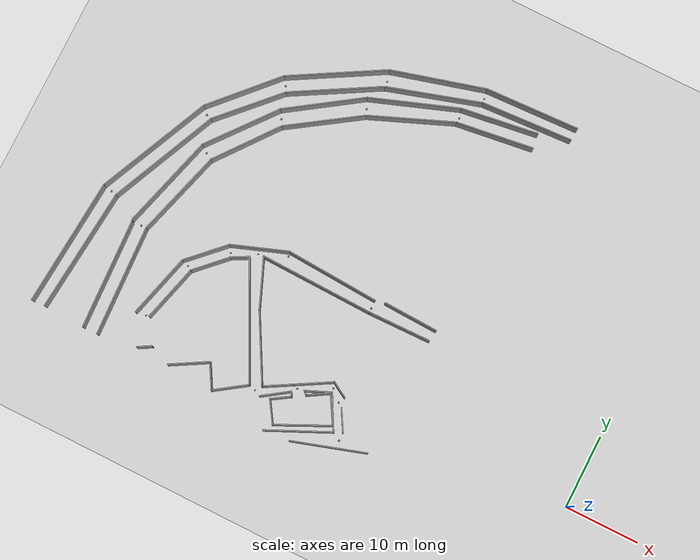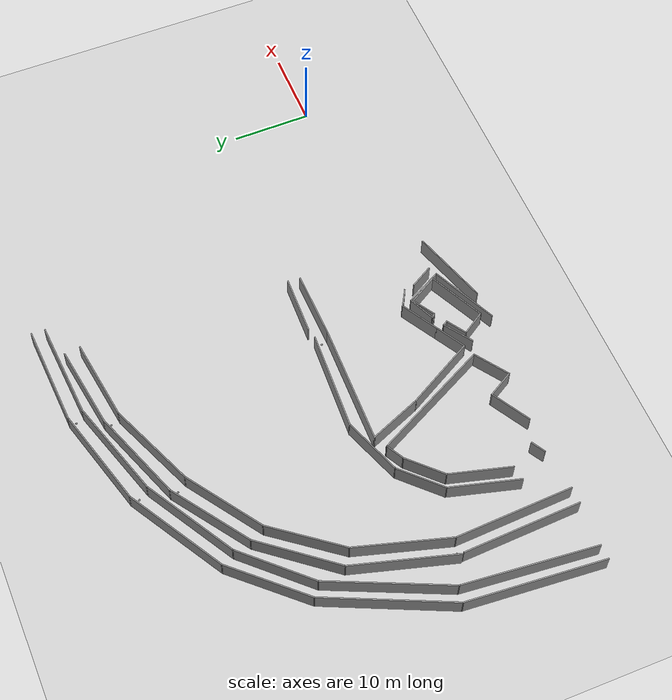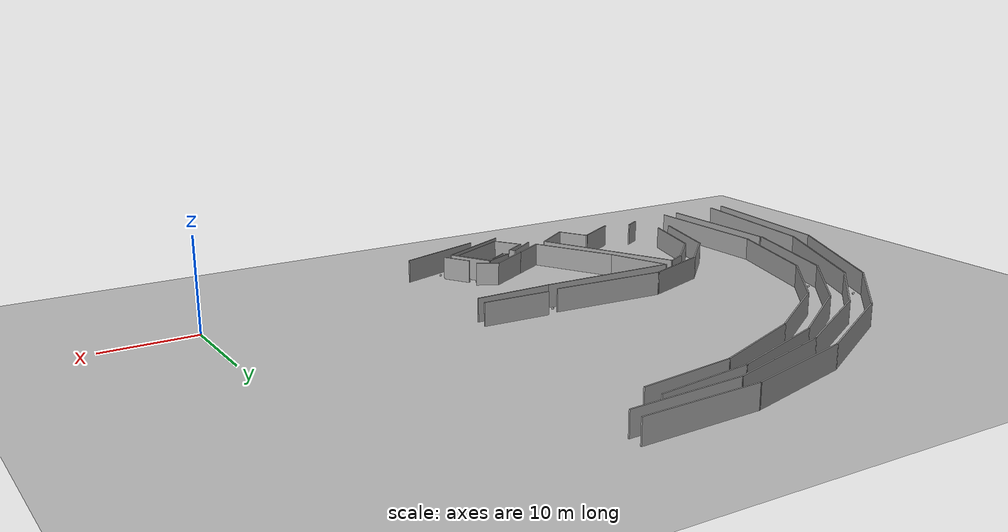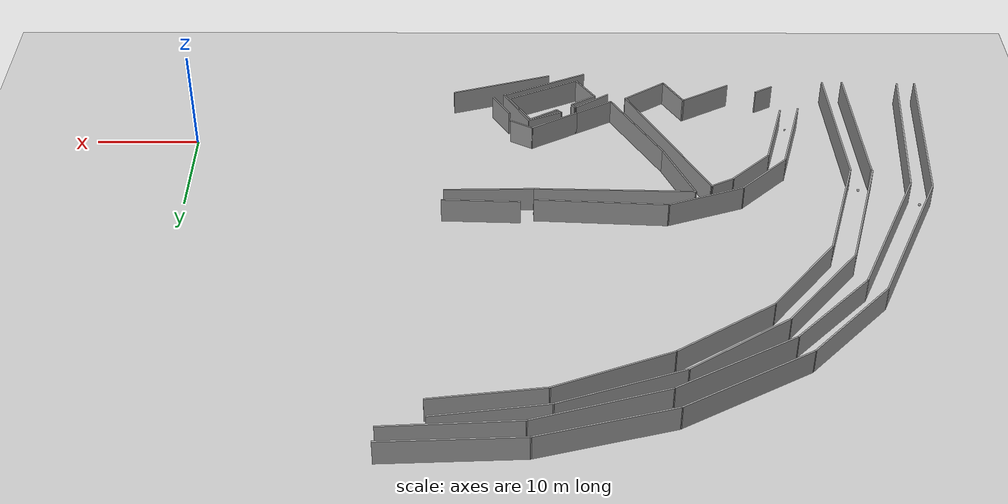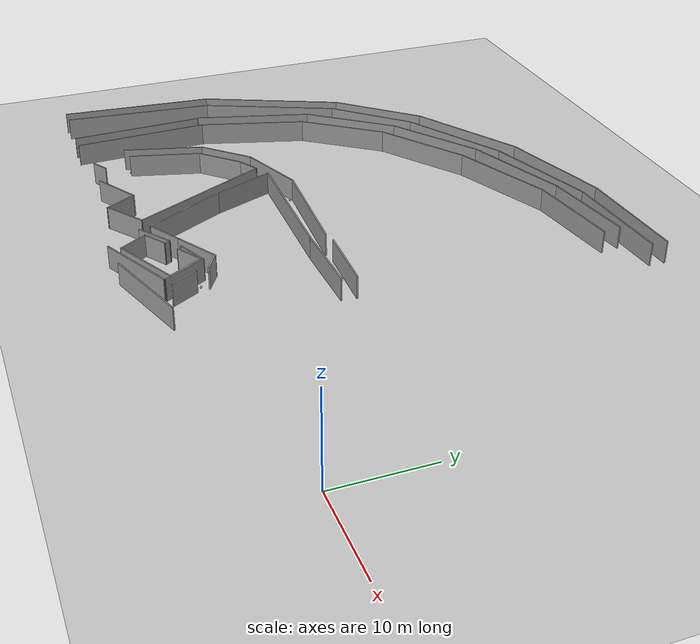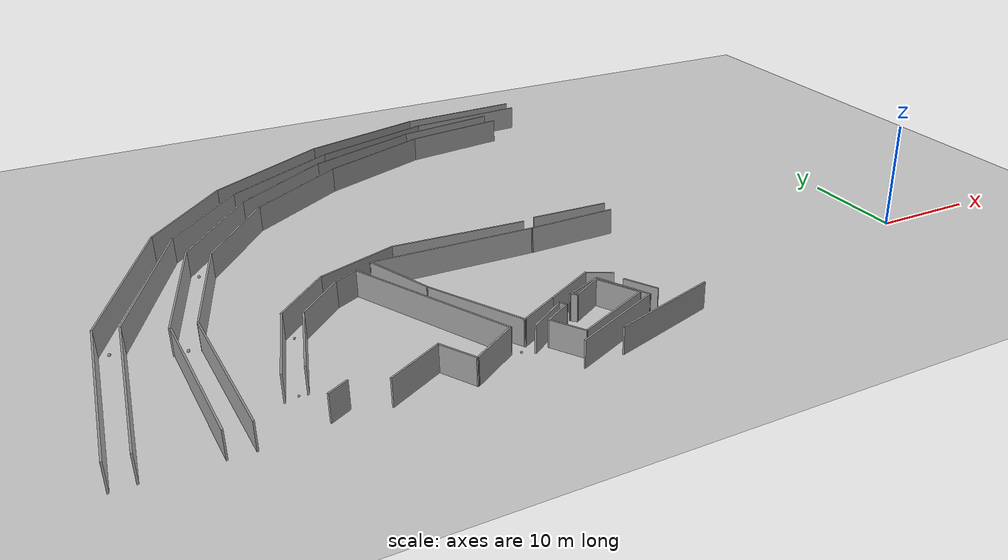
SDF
<sdf version="1.7">
 <world name="default">
  <model name="ground_plane">
   <static>1</static>
   <link name="link">
    <collision name="collision">
     <geometry><plane><normal>0 0 1</normal><size>100 100</size></plane></geometry>
     <surface><friction><ode><mu>100</mu><mu2>50</mu2></ode></friction></surface>
    </collision>
    <visual name="visual">
     <cast_shadows>0</cast_shadows>
     <geometry><plane><normal>0 0 1</normal><size>100 100</size></plane></geometry>
     <material>
      <script><uri>file://media/materials/scripts/gazebo.material</uri><name>Gazebo/Grey</name></script>
     </material>
    </visual>
   </link>
  </model>
  <model name="final_max_v1">
   <pose>-2.5231 0.6891 0 0 -0 0</pose>
   <link name="Wall_101">
    <collision name="Wall_101_Collision">
     <geometry><box><size>17.4551 0.15 2.5</size></box></geometry>
     <pose>0 0 1.25 0 -0 0</pose>
    </collision>
    <visual name="Wall_101_Visual">
     <pose>0 0 1.25 0 -0 0</pose>
     <geometry><box><size>17.4551 0.15 2.5</size></box></geometry>
     <material>
      <script><uri>file://media/materials/scripts/gazebo.material</uri><name>Gazebo/Grey</name></script>
      <ambient>1 1 1 1</ambient>
     </material>
     <meta><layer>0</layer></meta>
    </visual>
    <pose>-69.3611 0.906246 0 0 -0 1.49097</pose>
   </link>
   <link name="Wall_102">
    <collision name="Wall_102_Collision">
     <geometry><box><size>16.5473 0.15 2.5</size></box></geometry>
     <pose>0 0 1.25 0 -0 0</pose>
    </collision>
    <visual name="Wall_102_Visual">
     <pose>0 0 1.25 0 -0 0</pose>
     <geometry><box><size>16.5473 0.15 2.5</size></box></geometry>
     <material>
      <script><uri>file://media/materials/scripts/gazebo.material</uri><name>Gazebo/Grey</name></script>
      <ambient>1 1 1 1</ambient>
     </material>
     <meta><layer>0</layer></meta>
    </visual>
    <pose>-65.3062 17.0076 0 0 -0 1.14788</pose>
   </link>
   <link name="Wall_103">
    <collision name="Wall_103_Collision">
     <geometry><box><size>11.1751 0.15 2.5</size></box></geometry>
     <pose>0 0 1.25 0 -0 0</pose>
    </collision>
    <visual name="Wall_103_Visual">
     <pose>0 0 1.25 0 -0 0</pose>
     <geometry><box><size>11.1751 0.15 2.5</size></box></geometry>
     <material>
      <script><uri>file://media/materials/scripts/gazebo.material</uri><name>Gazebo/Grey</name></script>
      <ambient>1 1 1 1</ambient>
     </material>
     <meta><layer>0</layer></meta>
    </visual>
    <pose>-58.1953 28.5281 0 0 -0 0.823656</pose>
   </link>
   <link name="Wall_104">
    <collision name="Wall_104_Collision">
     <geometry><box><size>13.75 0.15 2.5</size></box></geometry>
     <pose>0 0 1.25 0 -0 0</pose>
    </collision>
    <visual name="Wall_104_Visual">
     <pose>0 0 1.25 0 -0 0</pose>
     <geometry><box><size>13.75 0.15 2.5</size></box></geometry>
     <material>
      <script><uri>file://media/materials/scripts/gazebo.material</uri><name>Gazebo/Grey</name></script>
      <ambient>1 1 1 1</ambient>
     </material>
     <meta><layer>0</layer></meta>
    </visual>
    <pose>-48.5603 35.9723 0 0 -0 0.523599</pose>
   </link>
   <link name="Wall_105">
    <collision name="Wall_105_Collision">
     <geometry><box><size>12.9786 0.15 2.5</size></box></geometry>
     <pose>0 0 1.25 0 -0 0</pose>
    </collision>
    <visual name="Wall_105_Visual">
     <pose>0 0 1.25 0 -0 0</pose>
     <geometry><box><size>12.9786 0.15 2.5</size></box></geometry>
     <material>
      <script><uri>file://media/materials/scripts/gazebo.material</uri><name>Gazebo/Grey</name></script>
      <ambient>1 1 1 1</ambient>
     </material>
     <meta><layer>0</layer></meta>
    </visual>
    <pose>-36.4883 41.0795 0 0 -0 0.269405</pose>
   </link>
   <link name="Wall_106">
    <collision name="Wall_106_Collision">
     <geometry><box><size>12.8269 0.15 2.5</size></box></geometry>
     <pose>0 0 1.25 0 -0 0</pose>
    </collision>
    <visual name="Wall_106_Visual">
     <pose>0 0 1.25 0 -0 0</pose>
     <geometry><box><size>12.8269 0.15 2.5</size></box></geometry>
     <material>
      <script><uri>file://media/materials/scripts/gazebo.material</uri><name>Gazebo/Grey</name></script>
      <ambient>1 1 1 1</ambient>
     </material>
     <meta><layer>0</layer></meta>
    </visual>
    <pose>-23.9732 43.0681 0 0 -0 0.044415</pose>
   </link>
   <link name="Wall_145">
    <collision name="Wall_145_Collision">
     <geometry><box><size>16.9669 0.15 2.5</size></box></geometry>
     <pose>0 0 1.25 0 -0 0</pose>
    </collision>
    <visual name="Wall_145_Visual">
     <pose>0 0 1.25 0 -0 0</pose>
     <geometry><box><size>16.9669 0.15 2.5</size></box></geometry>
     <material>
      <script><uri>file://media/materials/scripts/gazebo.material</uri><name>Gazebo/Grey</name></script>
      <ambient>1 1 1 1</ambient>
     </material>
     <meta><layer>0</layer></meta>
    </visual>
    <pose>-67.4602 0.714958 0 0 -0 1.47766</pose>
   </link>
   <link name="Wall_147">
    <collision name="Wall_147_Collision">
     <geometry><box><size>15.7591 0.15 2.5</size></box></geometry>
     <pose>0 0 1.25 0 -0 0</pose>
    </collision>
    <visual name="Wall_147_Visual">
     <pose>0 0 1.25 0 -0 0</pose>
     <geometry><box><size>15.7591 0.15 2.5</size></box></geometry>
     <material>
      <script><uri>file://media/materials/scripts/gazebo.material</uri><name>Gazebo/Grey</name></script>
      <ambient>1 1 1 1</ambient>
     </material>
     <meta><layer>0</layer></meta>
    </visual>
    <pose>-63.5042 16.217 0 0 -0 1.15197</pose>
   </link>
   <link name="Wall_149">
    <collision name="Wall_149_Collision">
     <geometry><box><size>10.4318 0.15 2.5</size></box></geometry>
     <pose>0 0 1.25 0 -0 0</pose>
    </collision>
    <visual name="Wall_149_Visual">
     <pose>0 0 1.25 0 -0 0</pose>
     <geometry><box><size>10.4318 0.15 2.5</size></box></geometry>
     <material>
      <script><uri>file://media/materials/scripts/gazebo.material</uri><name>Gazebo/Grey</name></script>
      <ambient>1 1 1 1</ambient>
     </material>
     <meta><layer>0</layer></meta>
    </visual>
    <pose>-56.7882 27.073 0 0 -0 0.810709</pose>
   </link>
   <link name="Wall_151">
    <collision name="Wall_151_Collision">
     <geometry><box><size>12.8849 0.15 2.5</size></box></geometry>
     <pose>0 0 1.25 0 -0 0</pose>
    </collision>
    <visual name="Wall_151_Visual">
     <pose>0 0 1.25 0 -0 0</pose>
     <geometry><box><size>12.8849 0.15 2.5</size></box></geometry>
     <material>
      <script><uri>file://media/materials/scripts/gazebo.material</uri><name>Gazebo/Grey</name></script>
      <ambient>1 1 1 1</ambient>
     </material>
     <meta><layer>0</layer></meta>
    </visual>
    <pose>-47.7262 33.973 0 0 -0 0.521834</pose>
   </link>
   <link name="Wall_153">
    <collision name="Wall_153_Collision">
     <geometry><box><size>12.9542 0.15 2.5</size></box></geometry>
     <pose>0 0 1.25 0 -0 0</pose>
    </collision>
    <visual name="Wall_153_Visual">
     <pose>0 0 1.25 0 -0 0</pose>
     <geometry><box><size>12.9542 0.15 2.5</size></box></geometry>
     <material>
      <script><uri>file://media/materials/scripts/gazebo.material</uri><name>Gazebo/Grey</name></script>
      <ambient>1 1 1 1</ambient>
     </material>
     <meta><layer>0</layer></meta>
    </visual>
    <pose>-36.0882 39.033 0 0 -0 0.299027</pose>
   </link>
   <link name="Wall_155">
    <collision name="Wall_155_Collision">
     <geometry><box><size>12.4081 0.15 2.5</size></box></geometry>
     <pose>0 0 1.25 0 -0 0</pose>
    </collision>
    <visual name="Wall_155_Visual">
     <pose>0 0 1.25 0 -0 0</pose>
     <geometry><box><size>12.4081 0.15 2.5</size></box></geometry>
     <material>
      <script><uri>file://media/materials/scripts/gazebo.material</uri><name>Gazebo/Grey</name></script>
      <ambient>1 1 1 1</ambient>
     </material>
     <meta><layer>0</layer></meta>
    </visual>
    <pose>-23.8522 41.287 0 0 -0 0.060078</pose>
   </link>
   <link name="Wall_178">
    <collision name="Wall_178_Collision">
     <geometry><box><size>14.9254 0.15 2.5</size></box></geometry>
     <pose>0 0 1.25 0 -0 0</pose>
    </collision>
    <visual name="Wall_178_Visual">
     <pose>0 0 1.25 0 -0 0</pose>
     <geometry><box><size>14.9254 0.15 2.5</size></box></geometry>
     <material>
      <script><uri>file://media/materials/scripts/gazebo.material</uri><name>Gazebo/Grey</name></script>
      <ambient>1 1 1 1</ambient>
     </material>
     <meta><layer>0</layer></meta>
    </visual>
    <pose>-62.967 -0.485436 0 0 -0 1.61298</pose>
   </link>
   <link name="Wall_180">
    <collision name="Wall_180_Collision">
     <geometry><box><size>13.3433 0.15 2.5</size></box></geometry>
     <pose>0 0 1.25 0 -0 0</pose>
    </collision>
    <visual name="Wall_180_Visual">
     <pose>0 0 1.25 0 -0 0</pose>
     <geometry><box><size>13.3433 0.15 2.5</size></box></geometry>
     <material>
      <script><uri>file://media/materials/scripts/gazebo.material</uri><name>Gazebo/Grey</name></script>
      <ambient>1 1 1 1</ambient>
     </material>
     <meta><layer>0</layer></meta>
    </visual>
    <pose>-61.5766 13.5197 0 0 -0 1.29537</pose>
   </link>
   <link name="Wall_181">
    <collision name="Wall_181_Collision">
     <geometry><box><size>11.2134 0.15 2.5</size></box></geometry>
     <pose>0 0 1.25 0 -0 0</pose>
    </collision>
    <visual name="Wall_181_Visual">
     <pose>0 0 1.25 0 -0 0</pose>
     <geometry><box><size>11.2134 0.15 2.5</size></box></geometry>
     <material>
      <script><uri>file://media/materials/scripts/gazebo.material</uri><name>Gazebo/Grey</name></script>
      <ambient>1 1 1 1</ambient>
     </material>
     <meta><layer>0</layer></meta>
    </visual>
    <pose>-56.3326 24.1917 0 0 -0 0.897354</pose>
   </link>
   <link name="Wall_183">
    <collision name="Wall_183_Collision">
     <geometry><box><size>11.4034 0.15 2.5</size></box></geometry>
     <pose>0 0 1.25 0 -0 0</pose>
    </collision>
    <visual name="Wall_183_Visual">
     <pose>0 0 1.25 0 -0 0</pose>
     <geometry><box><size>11.4034 0.15 2.5</size></box></geometry>
     <material>
      <script><uri>file://media/materials/scripts/gazebo.material</uri><name>Gazebo/Grey</name></script>
      <ambient>1 1 1 1</ambient>
     </material>
     <meta><layer>0</layer></meta>
    </visual>
    <pose>-48.2366 31.6897 0 0 -0 0.59934</pose>
   </link>
   <link name="Wall_185">
    <collision name="Wall_185_Collision">
     <geometry><box><size>12.286 0.15 2.5</size></box></geometry>
     <pose>0 0 1.25 0 -0 0</pose>
    </collision>
    <visual name="Wall_185_Visual">
     <pose>0 0 1.25 0 -0 0</pose>
     <geometry><box><size>12.286 0.15 2.5</size></box></geometry>
     <material>
      <script><uri>file://media/materials/scripts/gazebo.material</uri><name>Gazebo/Grey</name></script>
      <ambient>1 1 1 1</ambient>
     </material>
     <meta><layer>0</layer></meta>
    </visual>
    <pose>-37.8866 36.9337 0 0 -0 0.348123</pose>
   </link>
   <link name="Wall_187">
    <collision name="Wall_187_Collision">
     <geometry><box><size>10.5586 0.15 2.5</size></box></geometry>
     <pose>0 0 1.25 0 -0 0</pose>
    </collision>
    <visual name="Wall_187_Visual">
     <pose>0 0 1.25 0 -0 0</pose>
     <geometry><box><size>10.5586 0.15 2.5</size></box></geometry>
     <material>
      <script><uri>file://media/materials/scripts/gazebo.material</uri><name>Gazebo/Grey</name></script>
      <ambient>1 1 1 1</ambient>
     </material>
     <meta><layer>0</layer></meta>
    </visual>
    <pose>-27.0306 39.7397 0 0 -0 0.141897</pose>
   </link>
   <link name="Wall_196">
    <collision name="Wall_196_Collision">
     <geometry><box><size>15.018 0.15 2.5</size></box></geometry>
     <pose>0 0 1.25 0 -0 0</pose>
    </collision>
    <visual name="Wall_196_Visual">
     <pose>0 0 1.25 0 -0 0</pose>
     <geometry><box><size>15.018 0.15 2.5</size></box></geometry>
     <material>
      <script><uri>file://media/materials/scripts/gazebo.material</uri><name>Gazebo/Grey</name></script>
      <ambient>1 1 1 1</ambient>
     </material>
     <meta><layer>0</layer></meta>
    </visual>
    <pose>-60.9452 -0.428503 0 0 -0 1.61444</pose>
   </link>
   <link name="Wall_198">
    <collision name="Wall_198_Collision">
     <geometry><box><size>12.2392 0.15 2.5</size></box></geometry>
     <pose>0 0 1.25 0 -0 0</pose>
    </collision>
    <visual name="Wall_198_Visual">
     <pose>0 0 1.25 0 -0 0</pose>
     <geometry><box><size>12.2392 0.15 2.5</size></box></geometry>
     <material>
      <script><uri>file://media/materials/scripts/gazebo.material</uri><name>Gazebo/Grey</name></script>
      <ambient>1 1 1 1</ambient>
     </material>
     <meta><layer>0</layer></meta>
    </visual>
    <pose>-59.5904 12.8051 0 0 -0 1.28932</pose>
   </link>
   <link name="Wall_200">
    <collision name="Wall_200_Collision">
     <geometry><box><size>10.2252 0.15 2.5</size></box></geometry>
     <pose>0 0 1.25 0 -0 0</pose>
    </collision>
    <visual name="Wall_200_Visual">
     <pose>0 0 1.25 0 -0 0</pose>
     <geometry><box><size>10.2252 0.15 2.5</size></box></geometry>
     <material>
      <script><uri>file://media/materials/scripts/gazebo.material</uri><name>Gazebo/Grey</name></script>
      <ambient>1 1 1 1</ambient>
     </material>
     <meta><layer>0</layer></meta>
    </visual>
    <pose>-54.8331 22.5996 0 0 -0 0.913407</pose>
   </link>
   <link name="Wall_203">
    <collision name="Wall_203_Collision">
     <geometry><box><size>11.085 0.15 2.5</size></box></geometry>
     <pose>0 0 1.25 0 -0 0</pose>
    </collision>
    <visual name="Wall_203_Visual">
     <pose>0 0 1.25 0 -0 0</pose>
     <geometry><box><size>11.085 0.15 2.5</size></box></geometry>
     <material>
      <script><uri>file://media/materials/scripts/gazebo.material</uri><name>Gazebo/Grey</name></script>
      <ambient>1 1 1 1</ambient>
     </material>
     <meta><layer>0</layer></meta>
    </visual>
    <pose>-47.218 29.6386 0 0 -0 0.592066</pose>
   </link>
   <link name="Wall_205">
    <collision name="Wall_205_Collision">
     <geometry><box><size>11.7846 0.15 2.5</size></box></geometry>
     <pose>0 0 1.25 0 -0 0</pose>
    </collision>
    <visual name="Wall_205_Visual">
     <pose>0 0 1.25 0 -0 0</pose>
     <geometry><box><size>11.7846 0.15 2.5</size></box></geometry>
     <material>
      <script><uri>file://media/materials/scripts/gazebo.material</uri><name>Gazebo/Grey</name></script>
      <ambient>1 1 1 1</ambient>
     </material>
     <meta><layer>0</layer></meta>
    </visual>
    <pose>-37.2991 34.8978 0 0 -0 0.389317</pose>
   </link>
   <link name="Wall_207">
    <collision name="Wall_207_Collision">
     <geometry><box><size>10.546 0.15 2.5</size></box></geometry>
     <pose>0 0 1.25 0 -0 0</pose>
    </collision>
    <visual name="Wall_207_Visual">
     <pose>0 0 1.25 0 -0 0</pose>
     <geometry><box><size>10.546 0.15 2.5</size></box></geometry>
     <material>
      <script><uri>file://media/materials/scripts/gazebo.material</uri><name>Gazebo/Grey</name></script>
      <ambient>1 1 1 1</ambient>
     </material>
     <meta><layer>0</layer></meta>
    </visual>
    <pose>-26.7651 37.7958 0 0 -0 0.133136</pose>
   </link>
   <link name="Wall_394">
    <collision name="Wall_394_Collision">
     <geometry><box><size>7.47359 0.15 2.5</size></box></geometry>
     <pose>0 0 1.25 0 -0 0</pose>
    </collision>
    <visual name="Wall_394_Visual">
     <pose>0 0 1.25 0 -0 0</pose>
     <geometry><box><size>7.47359 0.15 2.5</size></box></geometry>
     <material>
      <script><uri>file://media/materials/scripts/gazebo.material</uri><name>Gazebo/Grey</name></script>
      <ambient>1 1 1 1</ambient>
     </material>
     <meta><layer>0</layer></meta>
    </visual>
    <pose>-25.9366 11.9607 0 0 -0 -0.037482</pose>
   </link>
   <link name="Wall_398">
    <collision name="Wall_398_Collision">
     <geometry><box><size>8.58721 0.15 2.5</size></box></geometry>
     <pose>0 0 1.25 0 -0 0</pose>
    </collision>
    <visual name="Wall_398_Visual">
     <pose>0 0 1.25 0 -0 0</pose>
     <geometry><box><size>8.58721 0.15 2.5</size></box></geometry>
     <material>
      <script><uri>file://media/materials/scripts/gazebo.material</uri><name>Gazebo/Grey</name></script>
      <ambient>1 1 1 1</ambient>
     </material>
     <meta><layer>0</layer></meta>
    </visual>
    <pose>-26.6782 10.1895 0 0 -0 0.01868</pose>
   </link>
   <link name="Wall_406">
    <collision name="Wall_406_Collision">
     <geometry><box><size>3.25 0.15 2.5</size></box></geometry>
     <pose>0 0 1.25 0 -0 0</pose>
    </collision>
    <visual name="Wall_406_Visual">
     <pose>0 0 1.25 0 -0 0</pose>
     <geometry><box><size>3.25 0.15 2.5</size></box></geometry>
     <material>
      <script><uri>file://media/materials/scripts/gazebo.material</uri><name>Gazebo/Grey</name></script>
      <ambient>1 1 1 1</ambient>
     </material>
     <meta><layer>0</layer></meta>
    </visual>
    <pose>-27.828 -3.70736 0 0 -0 -1.0472</pose>
   </link>
   <link name="Wall_411">
    <collision name="Wall_411_Collision">
     <geometry><box><size>3.44351 0.15 2.5</size></box></geometry>
     <pose>0 0 1.25 0 -0 0</pose>
    </collision>
    <visual name="Wall_411_Visual">
     <pose>0 0 1.25 0 -0 0</pose>
     <geometry><box><size>3.44351 0.15 2.5</size></box></geometry>
     <material>
      <script><uri>file://media/materials/scripts/gazebo.material</uri><name>Gazebo/Grey</name></script>
      <ambient>1 1 1 1</ambient>
     </material>
     <meta><layer>0</layer></meta>
    </visual>
    <pose>-36.3458 -6.77948 0 0 -0 -1.00041</pose>
   </link>
   <link name="Wall_412">
    <collision name="Wall_412_Collision">
     <geometry><box><size>7.75303 0.15 2.5</size></box></geometry>
     <pose>0 0 1.25 0 -0 0</pose>
    </collision>
    <visual name="Wall_412_Visual">
     <pose>0 0 1.25 0 -0 0</pose>
     <geometry><box><size>7.75303 0.15 2.5</size></box></geometry>
     <material>
      <script><uri>file://media/materials/scripts/gazebo.material</uri><name>Gazebo/Grey</name></script>
      <ambient>1 1 1 1</ambient>
     </material>
     <meta><layer>0</layer></meta>
    </visual>
    <pose>-32.0307 -6.51795 0 0 -0 0.448264</pose>
   </link>
   <link name="Wall_413">
    <collision name="Wall_413_Collision">
     <geometry><box><size>4.27641 0.15 2.5</size></box></geometry>
     <pose>0 0 1.25 0 -0 0</pose>
    </collision>
    <visual name="Wall_413_Visual">
     <pose>0 0 1.25 0 -0 0</pose>
     <geometry><box><size>4.27641 0.15 2.5</size></box></geometry>
     <material>
      <script><uri>file://media/materials/scripts/gazebo.material</uri><name>Gazebo/Grey</name></script>
      <ambient>1 1 1 1</ambient>
     </material>
     <meta><layer>0</layer></meta>
    </visual>
    <pose>-29.6509 -3.09202 0 0 -0 2.10252</pose>
   </link>
   <link name="Wall_414">
    <collision name="Wall_414_Collision">
     <geometry><box><size>3.27165 0.15 2.5</size></box></geometry>
     <pose>0 0 1.25 0 -0 0</pose>
    </collision>
    <visual name="Wall_414_Visual">
     <pose>0 0 1.25 0 -0 0</pose>
     <geometry><box><size>3.27165 0.15 2.5</size></box></geometry>
     <material>
      <script><uri>file://media/materials/scripts/gazebo.material</uri><name>Gazebo/Grey</name></script>
      <ambient>1 1 1 1</ambient>
     </material>
     <meta><layer>0</layer></meta>
    </visual>
    <pose>-32.0307 -2.12439 0 0 -0 -2.59543</pose>
   </link>
   <link name="Wall_417">
    <collision name="Wall_417_Collision">
     <geometry><box><size>2.91163 0.15 2.5</size></box></geometry>
     <pose>0 0 1.25 0 -0 0</pose>
    </collision>
    <visual name="Wall_417_Visual">
     <pose>0 0 1.25 0 -0 0</pose>
     <geometry><box><size>2.91163 0.15 2.5</size></box></geometry>
     <material>
      <script><uri>file://media/materials/scripts/gazebo.material</uri><name>Gazebo/Grey</name></script>
      <ambient>1 1 1 1</ambient>
     </material>
     <meta><layer>0</layer></meta>
    </visual>
    <pose>-36.0749 -4.64456 0 0 -0 -2.56839</pose>
   </link>
   <link name="Wall_422">
    <collision name="Wall_422_Collision">
     <geometry><box><size>0.785118 0.15 2.5</size></box></geometry>
     <pose>0 0 1.25 0 -0 0</pose>
    </collision>
    <visual name="Wall_422_Visual">
     <pose>0 0 1.25 0 -0 0</pose>
     <geometry><box><size>0.785118 0.15 2.5</size></box></geometry>
     <material>
      <script><uri>file://media/materials/scripts/gazebo.material</uri><name>Gazebo/Grey</name></script>
      <ambient>1 1 1 1</ambient>
     </material>
     <meta><layer>0</layer></meta>
    </visual>
    <pose>-35.0775 -3.62304 0 0 -0 -1.03267</pose>
   </link>
   <link name="Wall_424">
    <collision name="Wall_424_Collision">
     <geometry><box><size>0.742584 0.15 2.5</size></box></geometry>
     <pose>0 0 1.25 0 -0 0</pose>
    </collision>
    <visual name="Wall_424_Visual">
     <pose>0 0 1.25 0 -0 0</pose>
     <geometry><box><size>0.742584 0.15 2.5</size></box></geometry>
     <material>
      <script><uri>file://media/materials/scripts/gazebo.material</uri><name>Gazebo/Grey</name></script>
      <ambient>1 1 1 1</ambient>
     </material>
     <meta><layer>0</layer></meta>
    </visual>
    <pose>-33.5761 -2.7277 0 0 -0 -0.775427</pose>
   </link>
   <link name="Wall_426">
    <collision name="Wall_426_Collision">
     <geometry><box><size>4.25 0.15 2.5</size></box></geometry>
     <pose>0 0 1.25 0 -0 0</pose>
    </collision>
    <visual name="Wall_426_Visual">
     <pose>0 0 1.25 0 -0 0</pose>
     <geometry><box><size>4.25 0.15 2.5</size></box></geometry>
     <material>
      <script><uri>file://media/materials/scripts/gazebo.material</uri><name>Gazebo/Grey</name></script>
      <ambient>1 1 1 1</ambient>
     </material>
     <meta><layer>0</layer></meta>
    </visual>
    <pose>-37.0776 -3.40328 0 0 -0 -2.61799</pose>
   </link>
   <link name="Wall_427">
    <collision name="Wall_427_Collision">
     <geometry><box><size>9.82538 0.15 2.5</size></box></geometry>
     <pose>0 0 1.25 0 -0 0</pose>
    </collision>
    <visual name="Wall_427_Visual">
     <pose>0 0 1.25 0 -0 0</pose>
     <geometry><box><size>9.82538 0.15 2.5</size></box></geometry>
     <material>
      <script><uri>file://media/materials/scripts/gazebo.material</uri><name>Gazebo/Grey</name></script>
      <ambient>1 1 1 1</ambient>
     </material>
     <meta><layer>0</layer></meta>
    </visual>
    <pose>-41.1932 -0.194311 0 0 -0 2.07574</pose>
   </link>
   <link name="Wall_428">
    <collision name="Wall_428_Collision">
     <geometry><box><size>7.12478 0.15 2.5</size></box></geometry>
     <pose>0 0 1.25 0 -0 0</pose>
    </collision>
    <visual name="Wall_428_Visual">
     <pose>0 0 1.25 0 -0 0</pose>
     <geometry><box><size>7.12478 0.15 2.5</size></box></geometry>
     <material>
      <script><uri>file://media/materials/scripts/gazebo.material</uri><name>Gazebo/Grey</name></script>
      <ambient>1 1 1 1</ambient>
     </material>
     <meta><layer>0</layer></meta>
    </visual>
    <pose>-44.8559 7.26656 0 0 -0 1.95975</pose>
   </link>
   <link name="Wall_429">
    <collision name="Wall_429_Collision">
     <geometry><box><size>15.4372 0.15 2.5</size></box></geometry>
     <pose>0 0 1.25 0 -0 0</pose>
    </collision>
    <visual name="Wall_429_Visual">
     <pose>0 0 1.25 0 -0 0</pose>
     <geometry><box><size>15.4372 0.15 2.5</size></box></geometry>
     <material>
      <script><uri>file://media/materials/scripts/gazebo.material</uri><name>Gazebo/Grey</name></script>
      <ambient>1 1 1 1</ambient>
     </material>
     <meta><layer>0</layer></meta>
    </visual>
    <pose>-38.5372 10.3021 0 0 -0 -0.025039</pose>
   </link>
   <link name="Wall_431">
    <collision name="Wall_431_Collision">
     <geometry><box><size>5.25 0.15 2.5</size></box></geometry>
     <pose>0 0 1.25 0 -0 0</pose>
    </collision>
    <visual name="Wall_431_Visual">
     <pose>0 0 1.25 0 -0 0</pose>
     <geometry><box><size>5.25 0.15 2.5</size></box></geometry>
     <material>
      <script><uri>file://media/materials/scripts/gazebo.material</uri><name>Gazebo/Grey</name></script>
      <ambient>1 1 1 1</ambient>
     </material>
     <meta><layer>0</layer></meta>
    </visual>
    <pose>-33.0939 -1.10328 0 0 -0 0.523599</pose>
   </link>
   <link name="Wall_432">
    <collision name="Wall_432_Collision">
     <geometry><box><size>2.5 0.15 2.5</size></box></geometry>
     <pose>0 0 1.25 0 -0 0</pose>
    </collision>
    <visual name="Wall_432_Visual">
     <pose>0 0 1.25 0 -0 0</pose>
     <geometry><box><size>2.5 0.15 2.5</size></box></geometry>
     <material>
      <script><uri>file://media/materials/scripts/gazebo.material</uri><name>Gazebo/Grey</name></script>
      <ambient>1 1 1 1</ambient>
     </material>
     <meta><layer>0</layer></meta>
    </visual>
    <pose>-29.8679 -0.415777 0 0 -0 -0.523599</pose>
   </link>
   <link name="Wall_457">
    <collision name="Wall_457_Collision">
     <geometry><box><size>3.68227 0.15 2.5</size></box></geometry>
     <pose>0 0 1.25 0 -0 0</pose>
    </collision>
    <visual name="Wall_457_Visual">
     <pose>0 0 1.25 0 -0 0</pose>
     <geometry><box><size>3.68227 0.15 2.5</size></box></geometry>
     <material>
      <script><uri>file://media/materials/scripts/gazebo.material</uri><name>Gazebo/Grey</name></script>
      <ambient>1 1 1 1</ambient>
     </material>
     <meta><layer>0</layer></meta>
    </visual>
    <pose>-32.1675 -1.81723 0 0 -0 0.409418</pose>
   </link>
   <link name="Wall_458">
    <collision name="Wall_458_Collision">
     <geometry><box><size>5.20672 0.15 2.5</size></box></geometry>
     <pose>0 0 1.25 0 -0 0</pose>
    </collision>
    <visual name="Wall_458_Visual">
     <pose>0 0 1.25 0 -0 0</pose>
     <geometry><box><size>5.20672 0.15 2.5</size></box></geometry>
     <material>
      <script><uri>file://media/materials/scripts/gazebo.material</uri><name>Gazebo/Grey</name></script>
      <ambient>1 1 1 1</ambient>
     </material>
     <meta><layer>0</layer></meta>
    </visual>
    <pose>-29.3406 -3.33597 0 0 -0 -1.07323</pose>
   </link>
   <link name="Wall_463">
    <collision name="Wall_463_Collision">
     <geometry><box><size>9.07121 0.15 2.5</size></box></geometry>
     <pose>0 0 1.25 0 -0 0</pose>
    </collision>
    <visual name="Wall_463_Visual">
     <pose>0 0 1.25 0 -0 0</pose>
     <geometry><box><size>9.07121 0.15 2.5</size></box></geometry>
     <material>
      <script><uri>file://media/materials/scripts/gazebo.material</uri><name>Gazebo/Grey</name></script>
      <ambient>1 1 1 1</ambient>
     </material>
     <meta><layer>0</layer></meta>
    </visual>
    <pose>-32.1789 -7.43774 0 0 -0 0.435058</pose>
   </link>
   <link name="Wall_467">
    <collision name="Wall_467_Collision">
     <geometry><box><size>4.16609 0.15 2.5</size></box></geometry>
     <pose>0 0 1.25 0 -0 0</pose>
    </collision>
    <visual name="Wall_467_Visual">
     <pose>0 0 1.25 0 -0 0</pose>
     <geometry><box><size>4.16609 0.15 2.5</size></box></geometry>
     <material>
      <script><uri>file://media/materials/scripts/gazebo.material</uri><name>Gazebo/Grey</name></script>
      <ambient>1 1 1 1</ambient>
     </material>
     <meta><layer>0</layer></meta>
    </visual>
    <pose>-36.889 -4.49661 0 0 -0 0.607515</pose>
   </link>
   <link name="Wall_594">
    <collision name="Wall_594_Collision">
     <geometry><box><size>10.1492 0.15 2.5</size></box></geometry>
     <pose>0 0 1.25 0 -0 0</pose>
    </collision>
    <visual name="Wall_594_Visual">
     <pose>0 0 1.25 0 -0 0</pose>
     <geometry><box><size>10.1492 0.15 2.5</size></box></geometry>
     <material>
      <script><uri>file://media/materials/scripts/gazebo.material</uri><name>Gazebo/Grey</name></script>
      <ambient>1 1 1 1</ambient>
     </material>
     <meta><layer>0</layer></meta>
    </visual>
    <pose>-27.8636 -7.51261 0 0 -0 -2.83413</pose>
   </link>
   <link name="Wall_625">
    <collision name="Wall_625_Collision">
     <geometry><box><size>9 0.15 2.5</size></box></geometry>
     <pose>0 0 1.25 0 -0 0</pose>
    </collision>
    <visual name="Wall_625_Visual">
     <pose>0 0 1.25 0 -0 0</pose>
     <geometry><box><size>9 0.15 2.5</size></box></geometry>
     <material>
      <script><uri>file://media/materials/scripts/gazebo.material</uri><name>Gazebo/Grey</name></script>
      <ambient>1 1 1 1</ambient>
     </material>
     <meta><layer>0</layer></meta>
    </visual>
    <pose>-56.3875 1.10446 0 0 -0 1.309</pose>
   </link>
   <link name="Wall_626">
    <collision name="Wall_626_Collision">
     <geometry><box><size>6.5 0.15 2.5</size></box></geometry>
     <pose>0 0 1.25 0 -0 0</pose>
    </collision>
    <visual name="Wall_626_Visual">
     <pose>0 0 1.25 0 -0 0</pose>
     <geometry><box><size>6.5 0.15 2.5</size></box></geometry>
     <material>
      <script><uri>file://media/materials/scripts/gazebo.material</uri><name>Gazebo/Grey</name></script>
      <ambient>1 1 1 1</ambient>
     </material>
     <meta><layer>0</layer></meta>
    </visual>
    <pose>-52.9972 7.62375 0 0 -0 0.785398</pose>
   </link>
   <link name="Wall_630">
    <collision name="Wall_630_Collision">
     <geometry><box><size>7.83382 0.15 2.5</size></box></geometry>
     <pose>0 0 1.25 0 -0 0</pose>
    </collision>
    <visual name="Wall_630_Visual">
     <pose>0 0 1.25 0 -0 0</pose>
     <geometry><box><size>7.83382 0.15 2.5</size></box></geometry>
     <material>
      <script><uri>file://media/materials/scripts/gazebo.material</uri><name>Gazebo/Grey</name></script>
      <ambient>1 1 1 1</ambient>
     </material>
     <meta><layer>0</layer></meta>
    </visual>
    <pose>-47.1431 11.186 0 0 -0 0.349939</pose>
   </link>
   <link name="Wall_631">
    <collision name="Wall_631_Collision">
     <geometry><box><size>12.7173 0.15 2.5</size></box></geometry>
     <pose>0 0 1.25 0 -0 0</pose>
    </collision>
    <visual name="Wall_631_Visual">
     <pose>0 0 1.25 0 -0 0</pose>
     <geometry><box><size>12.7173 0.15 2.5</size></box></geometry>
     <material>
      <script><uri>file://media/materials/scripts/gazebo.material</uri><name>Gazebo/Grey</name></script>
      <ambient>1 1 1 1</ambient>
     </material>
     <meta><layer>0</layer></meta>
    </visual>
    <pose>-37.2604 12.1472 0 0 -0 -0.056677</pose>
   </link>
   <link name="Wall_636">
    <collision name="Wall_636_Collision">
     <geometry><box><size>8 0.15 2.5</size></box></geometry>
     <pose>0 0 1.25 0 -0 0</pose>
    </collision>
    <visual name="Wall_636_Visual">
     <pose>0 0 1.25 0 -0 0</pose>
     <geometry><box><size>8 0.15 2.5</size></box></geometry>
     <material>
      <script><uri>file://media/materials/scripts/gazebo.material</uri><name>Gazebo/Grey</name></script>
      <ambient>1 1 1 1</ambient>
     </material>
     <meta><layer>0</layer></meta>
    </visual>
    <pose>-54.7034 0.889753 0 0 -0 1.309</pose>
   </link>
   <link name="Wall_637">
    <collision name="Wall_637_Collision">
     <geometry><box><size>5.5 0.15 2.5</size></box></geometry>
     <pose>0 0 1.25 0 -0 0</pose>
    </collision>
    <visual name="Wall_637_Visual">
     <pose>0 0 1.25 0 -0 0</pose>
     <geometry><box><size>5.5 0.15 2.5</size></box></geometry>
     <material>
      <script><uri>file://media/materials/scripts/gazebo.material</uri><name>Gazebo/Grey</name></script>
      <ambient>1 1 1 1</ambient>
     </material>
     <meta><layer>0</layer></meta>
    </visual>
    <pose>-51.796 6.57252 0 0 -0 0.785398</pose>
   </link>
   <link name="Wall_638">
    <collision name="Wall_638_Collision">
     <geometry><box><size>2.56617 0.15 2.5</size></box></geometry>
     <pose>0 0 1.25 0 -0 0</pose>
    </collision>
    <visual name="Wall_638_Visual">
     <pose>0 0 1.25 0 -0 0</pose>
     <geometry><box><size>2.56617 0.15 2.5</size></box></geometry>
     <material>
      <script><uri>file://media/materials/scripts/gazebo.material</uri><name>Gazebo/Grey</name></script>
      <ambient>1 1 1 1</ambient>
     </material>
     <meta><layer>0</layer></meta>
    </visual>
    <pose>-48.8419 9.03891 0 0 -0 0.495945</pose>
   </link>
   <link name="Wall_639">
    <collision name="Wall_639_Collision">
     <geometry><box><size>16.52 0.15 2.5</size></box></geometry>
     <pose>0 0 1.25 0 -0 0</pose>
    </collision>
    <visual name="Wall_639_Visual">
     <pose>0 0 1.25 0 -0 0</pose>
     <geometry><box><size>16.52 0.15 2.5</size></box></geometry>
     <material>
      <script><uri>file://media/materials/scripts/gazebo.material</uri><name>Gazebo/Grey</name></script>
      <ambient>1 1 1 1</ambient>
     </material>
     <meta><layer>0</layer></meta>
    </visual>
    <pose>-44.0786 2.3132 0 0 -0 -1.10163</pose>
   </link>
   <link name="Wall_655">
    <collision name="Wall_655_Collision">
     <geometry><box><size>4.99892 0.15 2.5</size></box></geometry>
     <pose>0 0 1.25 0 -0 0</pose>
    </collision>
    <visual name="Wall_655_Visual">
     <pose>0 0 1.25 0 -0 0</pose>
     <geometry><box><size>4.99892 0.15 2.5</size></box></geometry>
     <material>
      <script><uri>file://media/materials/scripts/gazebo.material</uri><name>Gazebo/Grey</name></script>
      <ambient>1 1 1 1</ambient>
     </material>
     <meta><layer>0</layer></meta>
    </visual>
    <pose>-42.3685 -6.37133 0 0 -0 0.607511</pose>
   </link>
   <link name="Wall_659">
    <collision name="Wall_659_Collision">
     <geometry><box><size>3.75 0.15 2.5</size></box></geometry>
     <pose>0 0 1.25 0 -0 0</pose>
    </collision>
    <visual name="Wall_659_Visual">
     <pose>0 0 1.25 0 -0 0</pose>
     <geometry><box><size>3.75 0.15 2.5</size></box></geometry>
     <material>
      <script><uri>file://media/materials/scripts/gazebo.material</uri><name>Gazebo/Grey</name></script>
      <ambient>1 1 1 1</ambient>
     </material>
     <meta><layer>0</layer></meta>
    </visual>
    <pose>-45.2592 -6.19643 0 0 -0 2.0944</pose>
   </link>
   <link name="Wall_660">
    <collision name="Wall_660_Collision">
     <geometry><box><size>5.5 0.15 2.5</size></box></geometry>
     <pose>0 0 1.25 0 -0 0</pose>
    </collision>
    <visual name="Wall_660_Visual">
     <pose>0 0 1.25 0 -0 0</pose>
     <geometry><box><size>5.5 0.15 2.5</size></box></geometry>
     <material>
      <script><uri>file://media/materials/scripts/gazebo.material</uri><name>Gazebo/Grey</name></script>
      <ambient>1 1 1 1</ambient>
     </material>
     <meta><layer>0</layer></meta>
    </visual>
    <pose>-48.4758 -5.97509 0 0 -0 -2.61799</pose>
   </link>
   <link name="Wall_675">
    <collision name="Wall_675_Collision">
     <geometry><box><size>2 0.15 2.5</size></box></geometry>
     <pose>0 0 1.25 0 -0 0</pose>
    </collision>
    <visual name="Wall_675_Visual">
     <pose>0 0 1.25 0 -0 0</pose>
     <geometry><box><size>2 0.15 2.5</size></box></geometry>
     <material>
      <script><uri>file://media/materials/scripts/gazebo.material</uri><name>Gazebo/Grey</name></script>
      <ambient>1 1 1 1</ambient>
     </material>
     <meta><layer>0</layer></meta>
    </visual>
    <pose>-54.4806 -6.62581 0 0 -0 0.523599</pose>
   </link>
   <static>1</static>
  </model>
  <model name="id_121">
   <pose>-58.9478 -2.22281 0.098466 0 -0 0</pose>
   <link name="link">
    <inertial>
     <mass>1</mass>
     <inertia><ixx>0.1</ixx><ixy>0</ixy><ixz>0</ixz><iyy>0.1</iyy><iyz>0</iyz><izz>0.1</izz></inertia>
    </inertial>
    <collision name="collision"><geometry><sphere><radius>0.0984663</radius></sphere></geometry></collision>
    <visual name="visual">
     <geometry><sphere><radius>0.0984663</radius></sphere></geometry>
     <material>
      <script><name>Gazebo/Grey</name><uri>file://media/materials/scripts/gazebo.material</uri></script>
     </material>
    </visual>
   </link>
  </model>
  <model name="id_122">
   <pose>-57.0425 5.88471 0.098466 0 -0 0</pose>
   <link name="link">
    <inertial>
     <mass>1</mass>
     <inertia><ixx>0.1</ixx><ixy>0</ixy><ixz>0</ixz><iyy>0.1</iyy><iyz>0</iyz><izz>0.1</izz></inertia>
    </inertial>
    <collision name="collision"><geometry><sphere><radius>0.0984663</radius></sphere></geometry></collision>
    <visual name="visual">
     <geometry><sphere><radius>0.0984663</radius></sphere></geometry>
     <material>
      <script><name>Gazebo/Grey</name><uri>file://media/materials/scripts/gazebo.material</uri></script>
     </material>
    </visual>
   </link>
  </model>
  <model name="id_123">
   <pose>-52.8981 9.88494 0.098466 0 -0 0</pose>
   <link name="link">
    <inertial>
     <mass>1</mass>
     <inertia><ixx>0.1</ixx><ixy>0</ixy><ixz>0</ixz><iyy>0.1</iyy><iyz>0</iyz><izz>0.1</izz></inertia>
    </inertial>
    <collision name="collision"><geometry><sphere><radius>0.0984663</radius></sphere></geometry></collision>
    <visual name="visual">
     <geometry><sphere><radius>0.0984663</radius></sphere></geometry>
     <material>
      <script><name>Gazebo/Grey</name><uri>file://media/materials/scripts/gazebo.material</uri></script>
     </material>
    </visual>
   </link>
  </model>
  <model name="id_125">
   <pose>-49.6335 11.3293 0.098466 0 -0 0</pose>
   <link name="link">
    <inertial>
     <mass>1</mass>
     <inertia><ixx>0.1</ixx><ixy>0</ixy><ixz>0</ixz><iyy>0.1</iyy><iyz>0</iyz><izz>0.1</izz></inertia>
    </inertial>
    <collision name="collision"><geometry><sphere><radius>0.0984663</radius></sphere></geometry></collision>
    <visual name="visual">
     <geometry><sphere><radius>0.0984663</radius></sphere></geometry>
     <material>
      <script><name>Gazebo/Grey</name><uri>file://media/materials/scripts/gazebo.material</uri></script>
     </material>
    </visual>
   </link>
  </model>
  <model name="id_126">
   <pose>-42.0781 -4.50004 0.098466 0 -0 0</pose>
   <link name="link">
    <inertial>
     <mass>1</mass>
     <inertia><ixx>0.1</ixx><ixy>0</ixy><ixz>0</ixz><iyy>0.1</iyy><iyz>0</iyz><izz>0.1</izz></inertia>
    </inertial>
    <collision name="collision"><geometry><sphere><radius>0.0984663</radius></sphere></geometry></collision>
    <visual name="visual">
     <geometry><sphere><radius>0.0984663</radius></sphere></geometry>
     <material>
      <script><name>Gazebo/Grey</name><uri>file://media/materials/scripts/gazebo.material</uri></script>
     </material>
    </visual>
   </link>
  </model>
  <model name="id_21">
   <pose>-32.6257 42.6545 0.128457 0 -0 0</pose>
   <link name="link">
    <inertial>
     <mass>1</mass>
     <inertia><ixx>0.1</ixx><ixy>0</ixy><ixz>0</ixz><iyy>0.1</iyy><iyz>0</iyz><izz>0.1</izz></inertia>
    </inertial>
    <collision name="collision"><geometry><sphere><radius>0.128457</radius></sphere></geometry></collision>
    <visual name="visual">
     <geometry><sphere><radius>0.128457</radius></sphere></geometry>
     <material>
      <script><name>Gazebo/Grey</name><uri>file://media/materials/scripts/gazebo.material</uri></script>
     </material>
    </visual>
   </link>
  </model>
  <model name="id_32">
   <pose>-44.9075 39.0155 0.128457 0 -0 0</pose>
   <link name="link">
    <inertial>
     <mass>1</mass>
     <inertia><ixx>0.1</ixx><ixy>0</ixy><ixz>0</ixz><iyy>0.1</iyy><iyz>0</iyz><izz>0.1</izz></inertia>
    </inertial>
    <collision name="collision"><geometry><sphere><radius>0.128457</radius></sphere></geometry></collision>
    <visual name="visual">
     <geometry><sphere><radius>0.128457</radius></sphere></geometry>
     <material>
      <script><name>Gazebo/Grey</name><uri>file://media/materials/scripts/gazebo.material</uri></script>
     </material>
    </visual>
   </link>
  </model>
  <model name="id_43">
   <pose>-56.4329 32.5751 0.128457 0 -0 0</pose>
   <link name="link">
    <inertial>
     <mass>1</mass>
     <inertia><ixx>0.1</ixx><ixy>0</ixy><ixz>0</ixz><iyy>0.1</iyy><iyz>0</iyz><izz>0.1</izz></inertia>
    </inertial>
    <collision name="collision"><geometry><sphere><radius>0.128457</radius></sphere></geometry></collision>
    <visual name="visual">
     <geometry><sphere><radius>0.128457</radius></sphere></geometry>
     <material>
      <script><name>Gazebo/Grey</name><uri>file://media/materials/scripts/gazebo.material</uri></script>
     </material>
    </visual>
   </link>
  </model>
  <model name="id_54">
   <pose>-63.8605 24.575 0.128457 0 -0 0</pose>
   <link name="link">
    <inertial>
     <mass>1</mass>
     <inertia><ixx>0.1</ixx><ixy>0</ixy><ixz>0</ixz><iyy>0.1</iyy><iyz>0</iyz><izz>0.1</izz></inertia>
    </inertial>
    <collision name="collision"><geometry><sphere><radius>0.128457</radius></sphere></geometry></collision>
    <visual name="visual">
     <geometry><sphere><radius>0.128457</radius></sphere></geometry>
     <material>
      <script><name>Gazebo/Grey</name><uri>file://media/materials/scripts/gazebo.material</uri></script>
     </material>
    </visual>
   </link>
  </model>
  <model name="id_65">
   <pose>-70.3151 10.1255 0.128457 0 -0 0</pose>
   <link name="link">
    <inertial>
     <mass>1</mass>
     <inertia><ixx>0.1</ixx><ixy>0</ixy><ixz>0</ixz><iyy>0.1</iyy><iyz>0</iyz><izz>0.1</izz></inertia>
    </inertial>
    <collision name="collision"><geometry><sphere><radius>0.128457</radius></sphere></geometry></collision>
    <visual name="visual">
     <geometry><sphere><radius>0.128457</radius></sphere></geometry>
     <material>
      <script><name>Gazebo/Grey</name><uri>file://media/materials/scripts/gazebo.material</uri></script>
     </material>
    </visual>
   </link>
  </model>
  <model name="id_76">
   <pose>-64.8053 7.85278 0.128457 0 -0 0</pose>
   <link name="link">
    <inertial>
     <mass>1</mass>
     <inertia><ixx>0.1</ixx><ixy>0</ixy><ixz>0</ixz><iyy>0.1</iyy><iyz>0</iyz><izz>0.1</izz></inertia>
    </inertial>
    <collision name="collision"><geometry><sphere><radius>0.128457</radius></sphere></geometry></collision>
    <visual name="visual">
     <geometry><sphere><radius>0.128457</radius></sphere></geometry>
     <material>
      <script><name>Gazebo/Grey</name><uri>file://media/materials/scripts/gazebo.material</uri></script>
     </material>
    </visual>
   </link>
  </model>
  <model name="id_87">
   <pose>-61.6121 20.0953 0.128457 0 -0 0</pose>
   <link name="link">
    <inertial>
     <mass>1</mass>
     <inertia><ixx>0.1</ixx><ixy>0</ixy><ixz>0</ixz><iyy>0.1</iyy><iyz>0</iyz><izz>0.1</izz></inertia>
    </inertial>
    <collision name="collision"><geometry><sphere><radius>0.128457</radius></sphere></geometry></collision>
    <visual name="visual">
     <geometry><sphere><radius>0.128457</radius></sphere></geometry>
     <material>
      <script><name>Gazebo/Grey</name><uri>file://media/materials/scripts/gazebo.material</uri></script>
     </material>
    </visual>
   </link>
  </model>
  <model name="id_97">
   <pose>-54.972 28.4528 0.128457 0 -0 0</pose>
   <link name="link">
    <inertial>
     <mass>1</mass>
     <inertia><ixx>0.1</ixx><ixy>0</ixy><ixz>0</ixz><iyy>0.1</iyy><iyz>0</iyz><izz>0.1</izz></inertia>
    </inertial>
    <collision name="collision"><geometry><sphere><radius>0.128457</radius></sphere></geometry></collision>
    <visual name="visual">
     <geometry><sphere><radius>0.128457</radius></sphere></geometry>
     <material>
      <script><name>Gazebo/Grey</name><uri>file://media/materials/scripts/gazebo.material</uri></script>
     </material>
    </visual>
   </link>
  </model>
  <model name="id_11">
   <pose>-45.6791 34.5712 0.128457 0 -0 0</pose>
   <link name="link">
    <inertial>
     <mass>1</mass>
     <inertia><ixx>0.1</ixx><ixy>0</ixy><ixz>0</ixz><iyy>0.1</iyy><iyz>0</iyz><izz>0.1</izz></inertia>
    </inertial>
    <collision name="collision"><geometry><sphere><radius>0.128457</radius></sphere></geometry></collision>
    <visual name="visual">
     <geometry><sphere><radius>0.128457</radius></sphere></geometry>
     <material>
      <script><name>Gazebo/Grey</name><uri>file://media/materials/scripts/gazebo.material</uri></script>
     </material>
    </visual>
   </link>
  </model>
  <model name="id_12">
   <pose>-34.4076 38.8877 0.128457 0 -0 0</pose>
   <link name="link">
    <inertial>
     <mass>1</mass>
     <inertia><ixx>0.1</ixx><ixy>0</ixy><ixz>0</ixz><iyy>0.1</iyy><iyz>0</iyz><izz>0.1</izz></inertia>
    </inertial>
    <collision name="collision"><geometry><sphere><radius>0.128457</radius></sphere></geometry></collision>
    <visual name="visual">
     <geometry><sphere><radius>0.128457</radius></sphere></geometry>
     <material>
      <script><name>Gazebo/Grey</name><uri>file://media/materials/scripts/gazebo.material</uri></script>
     </material>
    </visual>
   </link>
  </model>
  <model name="id_60">
   <pose>-33.5052 11.5725 0.128457 0 -0 0</pose>
   <link name="link">
    <inertial>
     <mass>1</mass>
     <inertia><ixx>0.1</ixx><ixy>0</ixy><ixz>0</ixz><iyy>0.1</iyy><iyz>0</iyz><izz>0.1</izz></inertia>
    </inertial>
    <collision name="collision"><geometry><sphere><radius>0.128457</radius></sphere></geometry></collision>
    <visual name="visual">
     <geometry><sphere><radius>0.128457</radius></sphere></geometry>
     <material>
      <script><name>Gazebo/Grey</name><uri>file://media/materials/scripts/gazebo.material</uri></script>
     </material>
    </visual>
   </link>
  </model>
  <model name="id_61">
   <pose>-46.0428 12.8224 0.128457 0 -0 0</pose>
   <link name="link">
    <inertial>
     <mass>1</mass>
     <inertia><ixx>0.1</ixx><ixy>0</ixy><ixz>0</ixz><iyy>0.1</iyy><iyz>0</iyz><izz>0.1</izz></inertia>
    </inertial>
    <collision name="collision"><geometry><sphere><radius>0.128457</radius></sphere></geometry></collision>
    <visual name="visual">
     <geometry><sphere><radius>0.128457</radius></sphere></geometry>
     <material>
      <script><name>Gazebo/Grey</name><uri>file://media/materials/scripts/gazebo.material</uri></script>
     </material>
    </visual>
   </link>
  </model>
  <model name="id_62">
   <pose>-31.8088 -1.11481 0.128457 0 -0 0</pose>
   <link name="link">
    <inertial>
     <mass>1</mass>
     <inertia><ixx>0.1</ixx><ixy>0</ixy><ixz>0</ixz><iyy>0.1</iyy><iyz>0</iyz><izz>0.1</izz></inertia>
    </inertial>
    <collision name="collision"><geometry><sphere><radius>0.128457</radius></sphere></geometry></collision>
    <visual name="visual">
     <geometry><sphere><radius>0.128457</radius></sphere></geometry>
     <material>
      <script><name>Gazebo/Grey</name><uri>file://media/materials/scripts/gazebo.material</uri></script>
     </material>
    </visual>
   </link>
  </model>
  <model name="id_63">
   <pose>-33.215 0.209283 0.128457 0 -0 0</pose>
   <link name="link">
    <inertial>
     <mass>1</mass>
     <inertia><ixx>0.1</ixx><ixy>0</ixy><ixz>0</ixz><iyy>0.1</iyy><iyz>0</iyz><izz>0.1</izz></inertia>
    </inertial>
    <collision name="collision"><geometry><sphere><radius>0.128457</radius></sphere></geometry></collision>
    <visual name="visual">
     <geometry><sphere><radius>0.128457</radius></sphere></geometry>
     <material>
      <script><name>Gazebo/Grey</name><uri>file://media/materials/scripts/gazebo.material</uri></script>
     </material>
    </visual>
   </link>
  </model>
  <model name="id_64">
   <pose>-37.3239 -1.89876 0.128457 0 -0 0</pose>
   <link name="link">
    <inertial>
     <mass>1</mass>
     <inertia><ixx>0.1</ixx><ixy>0</ixy><ixz>0</ixz><iyy>0.1</iyy><iyz>0</iyz><izz>0.1</izz></inertia>
    </inertial>
    <collision name="collision"><geometry><sphere><radius>0.128457</radius></sphere></geometry></collision>
    <visual name="visual">
     <geometry><sphere><radius>0.128457</radius></sphere></geometry>
     <material>
      <script><name>Gazebo/Grey</name><uri>file://media/materials/scripts/gazebo.material</uri></script>
     </material>
    </visual>
   </link>
  </model>
  <model name="id_70">
   <pose>-29.581 -5.43172 0.128457 0 -0 0</pose>
   <link name="link">
    <inertial>
     <mass>1</mass>
     <inertia><ixx>0.1</ixx><ixy>0</ixy><ixz>0</ixz><iyy>0.1</iyy><iyz>0</iyz><izz>0.1</izz></inertia>
    </inertial>
    <collision name="collision"><geometry><sphere><radius>0.128457</radius></sphere></geometry></collision>
    <visual name="visual">
     <geometry><sphere><radius>0.128457</radius></sphere></geometry>
     <material>
      <script><name>Gazebo/Grey</name><uri>file://media/materials/scripts/gazebo.material</uri></script>
     </material>
    </visual>
   </link>
  </model>
 </world>
</sdf>
